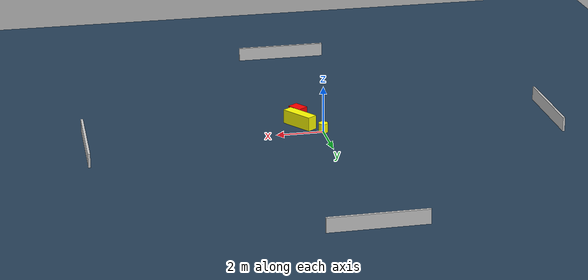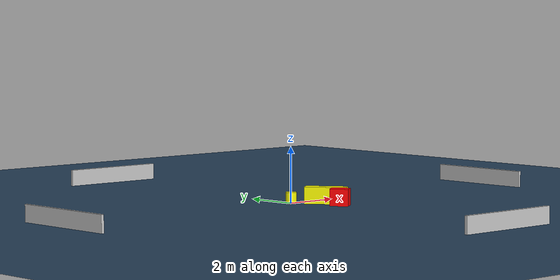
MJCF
<?xml version="1.0" ?>
<mujoco model="generated_environment">
  <option timestep="0.01" integrator="RK4" cone="elliptic"/>
  <default>
    <geom density="1"/>
  </default>
  <asset>
    <texture builtin="gradient" height="3072" name="skybox" rgb1="0.3 0.5 0.7" rgb2="0 0 0" type="skybox" width="512"/>
    <texture builtin="checker" height="300" name="groundplane" rgb1="0.2 0.3 0.4" rgb2="0.1 0.2 0.3" type="2d" width="300"/>
    <material name="groundplane" reflectance="0.2" texrepeat="5 5" texture="groundplane"/>
  </asset>
  <worldbody>
    <light dir="0 0 -1" directional="true" pos="0 0 1.5"/>
    <geom condim="3" friction="0.5 0.005 0.001" material="groundplane" name="floor" pos="0 0 0" size="0 0 0.05" type="plane"/>
    <body name="walls">
      <geom name="wall_1" condim="4" pos="-10.0 0.0 0.3" rgba="0.800000011920929 0.800000011920929 0.800000011920929 1.0" size="0.05 2.0 0.3" type="box"/>
      <geom name="wall_2" condim="4" pos="10.0 0.0 0.3" rgba="0.800000011920929 0.800000011920929 0.800000011920929 1.0" size="0.05 2.0 0.3" type="box"/>
      <geom name="wall_3" condim="4" pos="0.0 -10.0 0.3" rgba="0.800000011920929 0.800000011920929 0.800000011920929 1.0" size="2.0 0.05 0.3" type="box"/>
      <geom name="wall_4" condim="4" pos="0.0 10.0 0.3" rgba="0.800000011920929 0.800000011920929 0.800000011920929 1.0" size="2.0 0.05 0.3" type="box"/>
    </body>
    <body name="robot">
      <joint name="joint_x" type="slide" pos="0 0 0" axis="1 0 0"/>
      <joint name="joint_y" type="slide" pos="0 0 0" axis="0 1 0"/>
      <geom name="robot" type="cylinder" pos="0.0 0.0 0.2" size="0.2 0.2 0.0" mass="5.0" friction="1.0 0.005 0.0001" condim="4" rgba="1.0 1.0 0.0 1.0"/>
    </body>
    <body name="obstacle_1_movable">
      <geom name="obstacle_1_movable" condim="4" pos="0.8361663443099472 -0.9046351819323633 0.3" euler="0 0 305.2608007063656" friction="0.0 0.005 0.001" rgba="1.0 1.0 0.0 1.0" size="0.7393453264821539 0.2251431350350191 0.3" type="box" mass="0.1"/>
      <joint type="free"/>
    </body>
    <body name="obstacle_2_static">
      <geom name="obstacle_2_static" condim="4" pos="0.7710116123365444 -1.6657160431028797 0.3" euler="0 0 304.8149204498672" friction="0.0 0.005 0.001" rgba="1.0 0.0 0.0 1.0" size="0.325939305273645 0.2490110717062224 0.3" type="box"/>
    </body>
  </worldbody>
  <actuator>
    <motor name="actuator_x" joint="joint_x" gear="1" ctrlrange="-1 1"/>
    <motor name="actuator_y" joint="joint_y" gear="1" ctrlrange="-1 1"/>
  </actuator>
</mujoco>
